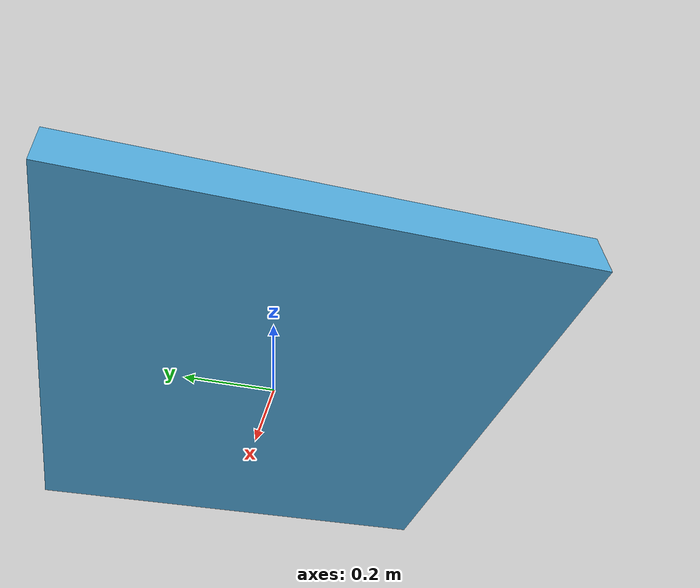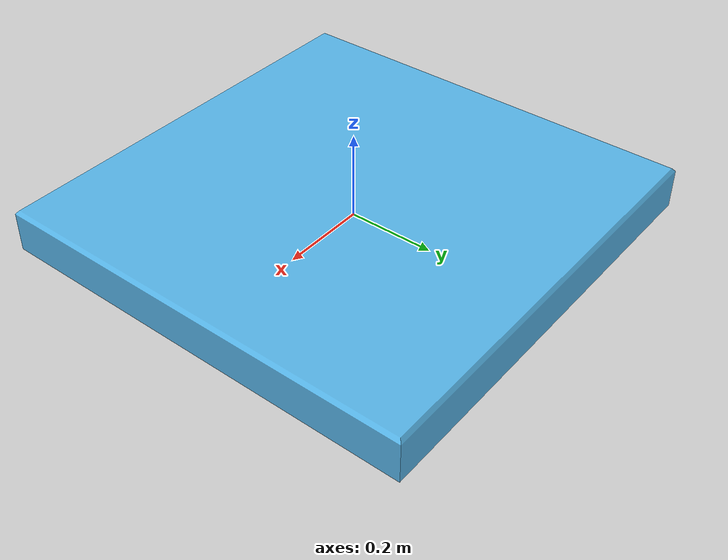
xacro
<robot name="manipulation_platform"
  xmlns:xacro="http://www.ros.org/wiki/xacro">

  <link name="world"/>

    <joint name="platform_link_fixed_joint"  type="fixed">
      <origin xyz="0 0 0" rpy="0 0 0" />
      <parent link="world"/>
      <child link="platform_link"/>
    </joint>

    <link name = "platform_link">
      <inertial>
        <origin xyz="0 0 0" />
        <mass value="25" />
        <inertia
          ixx="1" ixy="0"   ixz="0"
                  iyy="1"   iyz="0"
                            izz="1" />
      </inertial>
      <visual>
        <origin rpy="0 0 0 " xyz="0 0 0"/>
        <geometry>
          <mesh filename="package://lcsr_barrett/models/meshes/platform.stl"/>
        </geometry>
      </visual>
      <collision>
        <origin rpy="0 0 0 " xyz="0 0 0"/>
        <geometry>
          <mesh filename="package://lcsr_barrett/models/meshes/platform.stl"/>
        </geometry>
      </collision>
    </link>

    <gazebo reference="platform_link">
      <kp>50000</kp>
      <kd>8</kd>
    </gazebo>

</robot>
